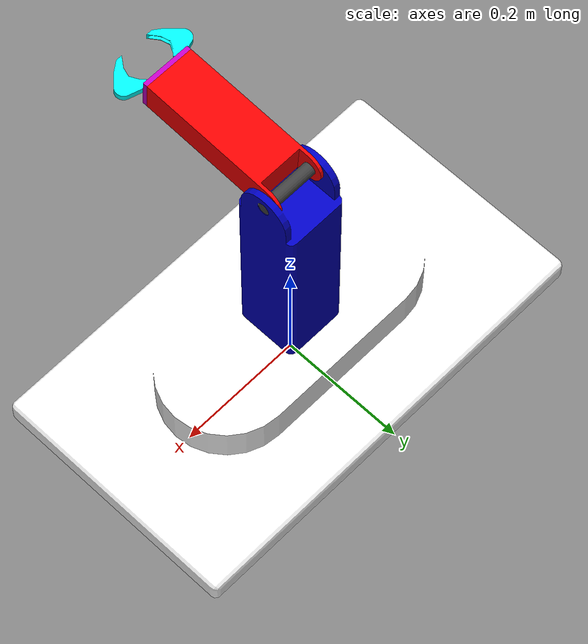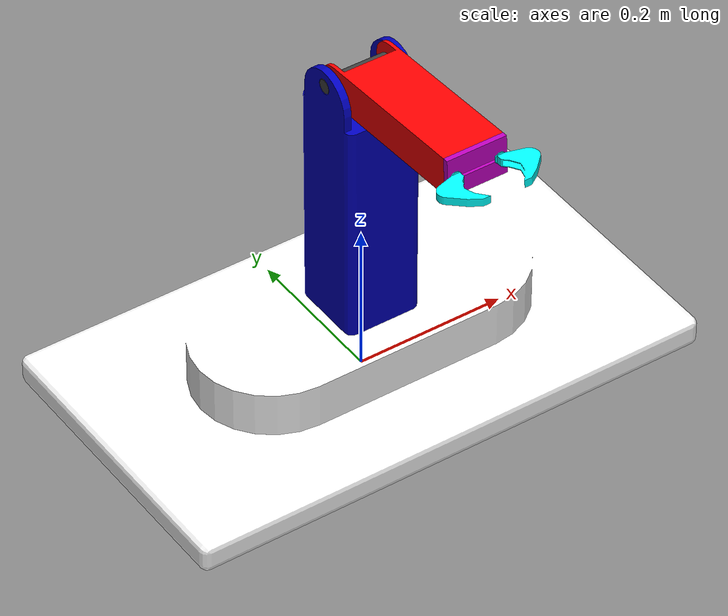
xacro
<?xml version="1.0" encoding="utf-8"?>
<robot name="basic_arm" xmlns:xacro="http://ros.org/wiki/xacro">

   <xacro:macro name="transmission_block" params="joint_name">
	  <transmission name="tran1">
	    <type>transmission_interface/SimpleTransmission</type>
	    <joint name="${joint_name}">
	      <hardwareInterface>hardware_interface/PositionJointInterface</hardwareInterface>
	    </joint>
	    <actuator name="motor1">
	      <hardwareInterface>hardware_interface/PositionJointInterface</hardwareInterface>
	      <mechanicalReduction>1</mechanicalReduction>
	    </actuator>
	  </transmission>
   </xacro:macro>

  <link name="world"/>

  <link
		name="base_link">
    <inertial>
      <origin
        xyz="0 0 0"
        rpy="0 0 0" />
      <mass
        value="9.5931" />
      <inertia
        ixx="0.10354"
        ixy="1.5247E-17"
        ixz="9.5845E-18"
        iyy="0.319"
        iyz="3.811E-18"
        izz="0.40885" />
    </inertial>
    <visual>
      <origin
        xyz="0 0 0"
        rpy="0 0 0" />
      <geometry>
        <mesh
          filename="package://robots/meshes/basic_arm/base_link.STL" />
      </geometry>
      <material
        name="">
        <color
          rgba="1 1 1 1" />
      </material>
    </visual>
    <collision>
      <origin
        xyz="0 0 0"
        rpy="0 0 0" />
      <geometry>
        <mesh
          filename="package://robots/meshes/basic_arm/base_link.STL" />
      </geometry>
    </collision>
  </link>

  <gazebo reference="base_link">
    <material>Gazebo/Green</material>
  </gazebo>

  <joint
		name="fixed" type="fixed">
	<parent link="world"/>
	<child link="base_link"/>
  </joint>

  <link
		name="arm_0">
    <inertial>
      <origin
        xyz="-3.8604E-17 0.15437 9.8794E-18"
        rpy="0 0 0" />
      <mass
        value="1.8301" />
      <inertia
        ixx="0.01625"
        ixy="7.6393E-19"
        ixz="0"
        iyy="0.0030443"
        iyz="-6.1116E-19"
        izz="0.01632" />
    </inertial>
    <visual>
      <origin
        xyz="0 0 0"
        rpy="0 0 0" />
      <geometry>
        <mesh
          filename="package://robots/meshes/basic_arm/arm_0.STL" />
      </geometry>
      <material
        name="">
        <color
          rgba="0 0 0.75294 1" />
      </material>
    </visual>
    <collision>
      <origin
        xyz="0 0 0"
        rpy="0 0 0" />
      <geometry>
        <mesh
          filename="package://robots/meshes/basic_arm/arm_0.STL" />
      </geometry>
    </collision>
  </link>

  <gazebo reference="arm_0">
    <material>Gazebo/Yellow</material>
  </gazebo>

  <joint
    name="arm_0_joint"
    type="revolute">
    <origin
      xyz="0 0 0.1"
      rpy="1.5708 0 0" />
    <parent
      link="base_link" />
    <child
      link="arm_0" />
    <axis
      xyz="0 1 0" />
    <limit
      lower="-3.14"
      upper="3.13"
      effort="300"
      velocity="1" />
    <dynamics
      damping="50"
      friction="1" />
  </joint>

  <link
    name="pin">
    <inertial>
      <origin
        xyz="-2.6143E-06 5.5511E-17 1.2143E-15"
        rpy="0 0 0" />
      <mass
        value="0.014701" />
      <inertia
        ixx="7.3244E-07"
        ixy="-8.3088E-23"
        ixz="1.0059E-21"
        iyy="1.2513E-05"
        iyz="1.1563E-25"
        izz="1.2513E-05" />
    </inertial>
    <visual>
      <origin
        xyz="0 0 0"
        rpy="0 0 0" />
      <geometry>
        <mesh
          filename="package://robots/meshes/basic_arm/pin.STL" />
      </geometry>
      <material
        name="">
        <color
          rgba="0.25098 0.25098 0.25098 1" />
      </material>
    </visual>
    <collision>
      <origin
        xyz="0 0 0"
        rpy="0 0 0" />
      <geometry>
        <mesh
          filename="package://robots/meshes/basic_arm/pin.STL" />
      </geometry>
    </collision>
  </link>

  <gazebo reference="pin">
    <material>Gazebo/Black</material>
  </gazebo>

  <joint
    name="pin_joint"
    type="fixed">
    <origin
      xyz="0 0.34 0"
      rpy="-3.1416 0 -3.1416" />
    <parent
      link="arm_0" />
    <child
      link="pin" />
  </joint>

  <link
    name="arm_1">
    <inertial>
      <origin
        xyz="-5.2292E-16 -0.0077891 -0.1177"
        rpy="0 0 0" />
      <mass
        value="0.48851" />
      <inertia
        ixx="0.0018179"
        ixy="-4.0658E-20"
        ixz="-8.1315E-20"
        iyy="0.001977"
        iyz="-0.00010636"
        izz="0.00037683" />
    </inertial>
    <visual>
      <origin
        xyz="0 0 0"
        rpy="0 0 0" />
      <geometry>
        <mesh
          filename="package://robots/meshes/basic_arm/arm_1.STL" />
      </geometry>
      <material
        name="">
        <color
          rgba="1 0 0 1" />
      </material>
    </visual>
    <collision>
      <origin
        xyz="0 0 0"
        rpy="0 0 0" />
      <geometry>
        <mesh
          filename="package://robots/meshes/basic_arm/arm_1.STL" />
      </geometry>
    </collision>
  </link>

  <gazebo reference="arm_1">
    <material>Gazebo/Red</material>
  </gazebo>

  <joint
    name="arm_1_joint"
    type="revolute">
    <origin
      xyz="0 0.34 0"
      rpy="-3.0083 0 -3.1416" />
    <parent
      link="arm_0" />
    <child
      link="arm_1" />
    <axis
      xyz="1 0 0" />
    <limit
      lower="-0.2"
      upper="3.2"
      effort="300"
      velocity="1" />
    <dynamics
      damping="50"
      friction="1" />
  </joint>

  <link
    name="gripper_base">
    <inertial>
      <origin
        xyz="-0.0072199 -7.9936E-15 -0.00037706"
        rpy="0 0 0" />
      <mass
        value="0.015527" />
      <inertia
        ixx="3.5572E-06"
        ixy="2.369E-21"
        ixz="9.635E-21"
        iyy="8.5569E-06"
        iyz="2.2764E-21"
        izz="1.1986E-05" />
    </inertial>
    <visual>
      <origin
        xyz="0 0 0"
        rpy="0 0 0" />
      <geometry>
        <mesh
          filename="package://robots/meshes/basic_arm/gripper_base.STL" />
      </geometry>
      <material
        name="">
        <color
          rgba="0.75294 0 0.75294 1" />
      </material>
    </visual>
    <collision>
      <origin
        xyz="0 0 0"
        rpy="0 0 0" />
      <geometry>
        <mesh
          filename="package://robots/meshes/basic_arm/gripper_base.STL" />
      </geometry>
    </collision>
  </link>

  <gazebo reference="gripper_base">
    <material>Gazebo/Red</material>
  </gazebo>

  <joint
    name="gripper_base_joint"
    type="fixed">
    <origin
      xyz="0.0072199 -0.014725 -0.22251"
      rpy="-0.066081 0 0" />
    <parent
      link="arm_1" />
    <child
      link="gripper_base" />
    <axis
      xyz="0 0 0" />
  </joint>

  <link
    name="gripper_hand_fix">
    <inertial>
      <origin
        xyz="-0.013549 0.00068659 0.026407"
        rpy="0 0 0" />
      <mass
        value="0.0024646" />
      <inertia
        ixx="5.7131E-07"
        ixy="1.205E-08"
        ixz="-4.3659E-08"
        iyy="8.0849E-07"
        iyz="2.2124E-09"
        izz="3.1493E-07" />
    </inertial>
    <visual>
      <origin
        xyz="0 0 0"
        rpy="0 0 0" />
      <geometry>
        <mesh
          filename="package://robots/meshes/basic_arm/gripper_hand_fix.STL" />
      </geometry>
      <material
        name="">
        <color
          rgba="0 1 1 1" />
      </material>
    </visual>
    <collision>
      <origin
        xyz="0 0 0"
        rpy="0 0 0" />
      <geometry>
        <mesh
          filename="package://robots/meshes/basic_arm/gripper_hand_fix.STL" />
      </geometry>
    </collision>
  </link>

  <gazebo reference="gripper_hand_fix">
    <material>Gazebo/Blue</material>
  </gazebo>

  <joint
    name="gripper_hand_fix"
    type="fixed">
    <origin
      xyz="0.02278 0 0"
      rpy="-3.1416 0 3.091" />
    <parent
      link="gripper_base" />
    <child
      link="gripper_hand_fix" />
    <axis
      xyz="0 0 0" />
  </joint>

  <link
    name="gripper_hand_move">
    <inertial>
      <origin
        xyz="-0.013549 -0.00068659 -0.026407"
        rpy="0 0 0" />
      <mass
        value="0.0024646" />
      <inertia
        ixx="5.7131E-07"
        ixy="-1.205E-08"
        ixz="4.3659E-08"
        iyy="8.0849E-07"
        iyz="2.2124E-09"
        izz="3.1493E-07" />
    </inertial>
    <visual>
      <origin
        xyz="0 0 0"
        rpy="0 0 0" />
      <geometry>
        <mesh
          filename="package://robots/meshes/basic_arm/gripper_hand_move.STL" />
      </geometry>
      <material
        name="">
        <color
          rgba="0 1 1 1" />
      </material>
    </visual>
    <collision>
      <origin
        xyz="0 0 0"
        rpy="0 0 0" />
      <geometry>
        <mesh
          filename="package://robots/meshes/basic_arm/gripper_hand_move.STL" />
      </geometry>
    </collision>
  </link>

  <gazebo reference="gripper_hand_move">
    <material>Gazebo/Blue</material>
  </gazebo>

  <joint
    name="gripper_hand_move_joint"
    type="prismatic">
    <origin
      xyz="-0.03722 0 0"
      rpy="0 0 -0.050632" />
    <parent
      link="gripper_base" />
    <child
      link="gripper_hand_move" />
    <axis
      xyz="0.99872 0.05061 0" />
    <limit
      lower="0"
      upper="0.045"
      effort="50"
      velocity="0.5" />
    <dynamics
      damping="30"
      friction="0.5" />
  </joint>

  <!-- Transmissions for ROS Control -->

   <xacro:transmission_block joint_name="arm_0_joint"/>
   <xacro:transmission_block joint_name="arm_1_joint"/>
   <xacro:transmission_block joint_name="gripper_hand_move_joint"/>

   <!-- ros_control plugin -->
   <gazebo>
    <plugin name="gazebo_ros_control" filename="libgazebo_ros_control.so">
      <robotNamespace>/robots/basic_arm</robotNamespace>
    </plugin>
   </gazebo>

</robot>
